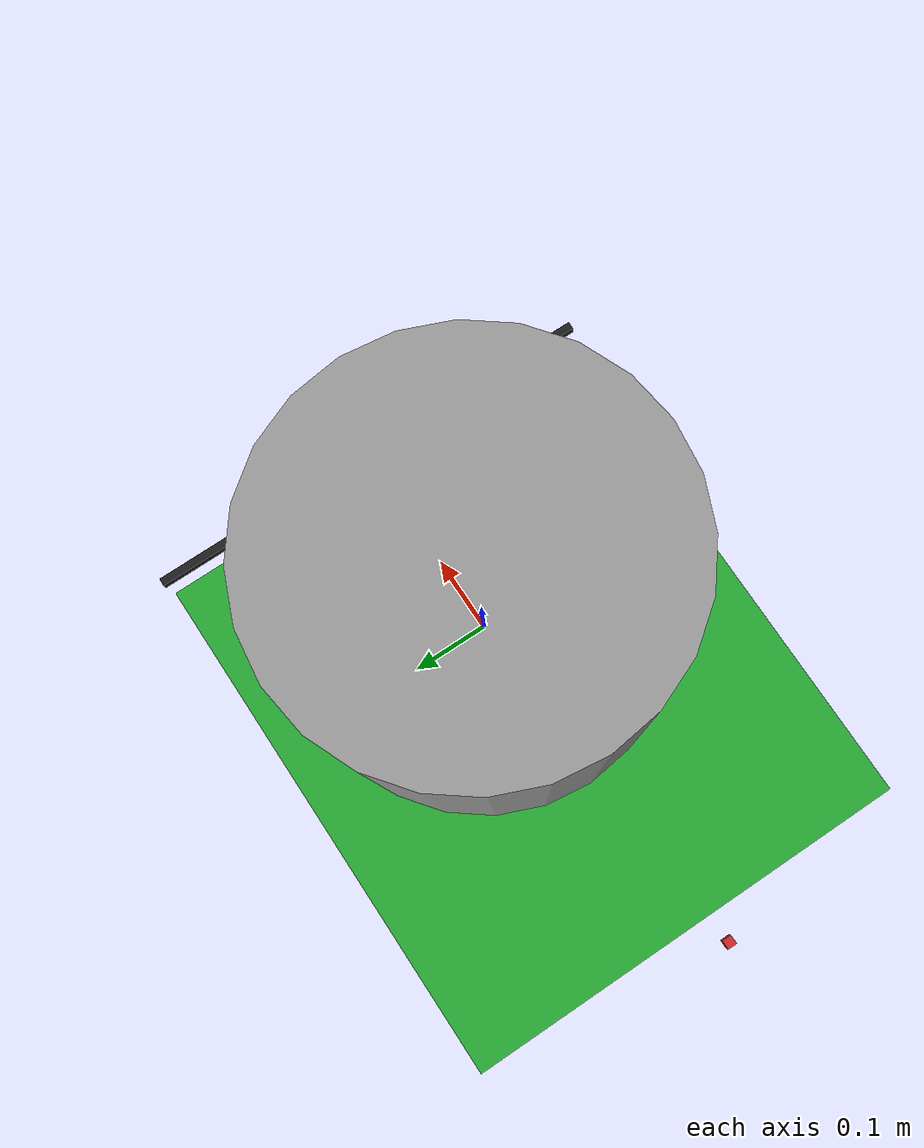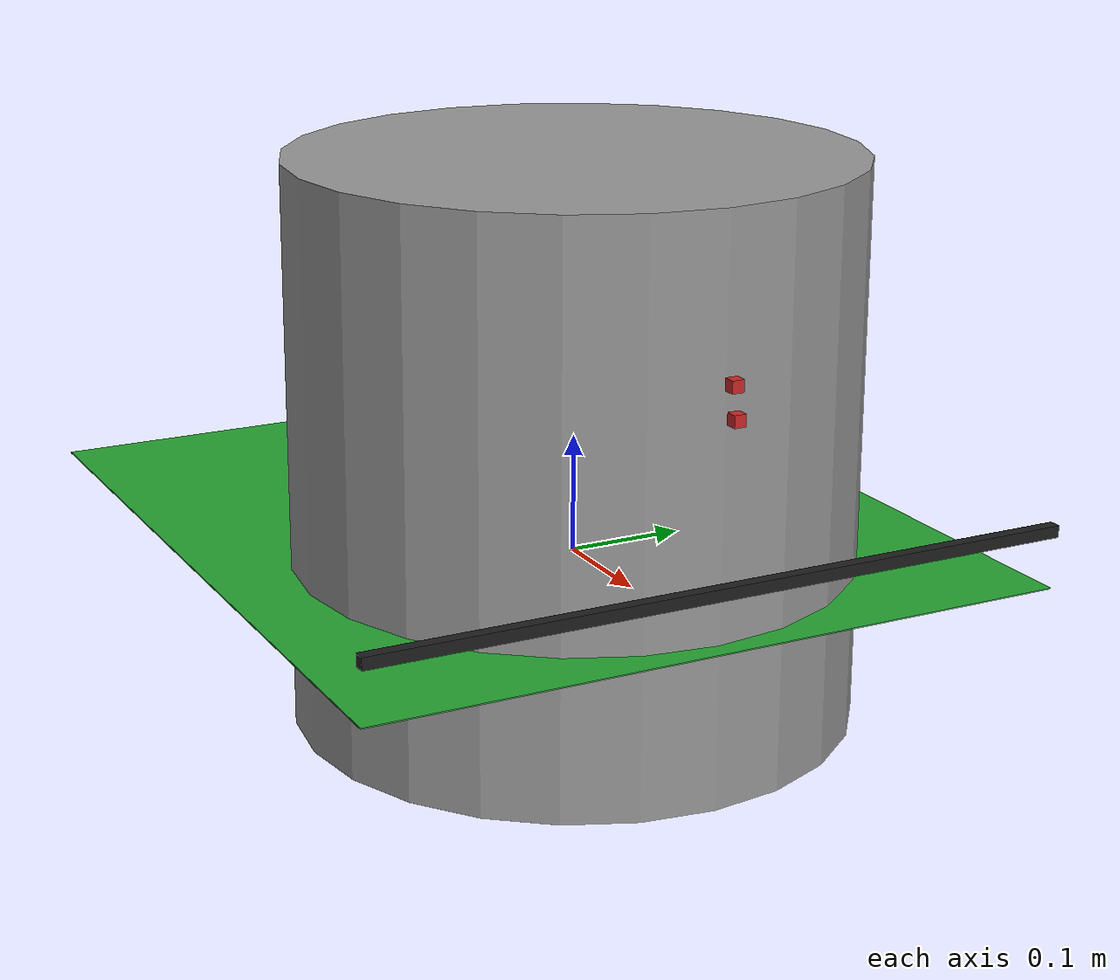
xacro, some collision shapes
<?xml version="1.0"?>

<robot name="tetraDS" xmlns:xacro="http://ros.org/wiki/xacro">

  <!-- Define a number of dimensions using properties -->
  <xacro:property name="PI" value="3.1415926" />

   <!-- Include all component files -->
   <xacro:include filename="$(find tetraDS_description)/urdf/tetraDS/materials.urdf.xacro" />
   <xacro:include filename="$(find tetraDS_description)/urdf/tetraDS/base.urdf.xacro" />

   <!-- Add the base and wheels -->
   <base name="base" color="Black"/>

  <link name="laser">
      <visual>
        <origin xyz="0 0 0" rpy="0 0 0" />
        <geometry>
          <box size="0.01 0.01 0.01" />
        </geometry>
        <material name="Red" />
      </visual>
  </link>

  <joint name="laser_flag" type="fixed">
    <origin xyz="0.120 0 0.131" rpy="0 0 -${PI/2}" />
    <parent link="base_link"/>
    <child link="laser" />
  </joint>

  <link name="laser_link2">
      <visual>
        <origin xyz="0 0 0" rpy="0 0 0" />
        <geometry>
          <box size="0.01 0.01 0.01" />
        </geometry>
        <material name="Red" />
      </visual>
  </link>

  <joint name="base_link_to_laser_link2" type="fixed">
    <origin xyz="-0.446 0.0 0.160" rpy="0 0 ${PI}" />
    <parent link="base_link"/>
    <child link="laser_link2" />
  </joint>

  <link name="imu_link">
      <visual>
        <origin xyz="0 0 0" rpy="0 0 0" />
        <geometry>
          <box size="0.01 0.01 0.01" />
        </geometry>
        <material name="Red" />
      </visual>
  </link>

  <joint name="base_link_to_imu_link" type="fixed">
    <origin xyz="0.0 0 0.124" rpy="0 0 0" />
    <parent link="base_link"/>
    <child link="imu_link" />
  </joint>

 <link name="usb_cam">
      <visual>
        <origin xyz="0 0 0" rpy="0 0 0" />
        <geometry>
          <box size="0.01 0.01 0.01" />
        </geometry>
        <material name="Red" />
      </visual>
  </link>

  <joint name="usb_cam" type="fixed">
    <origin xyz="0.248 0.0 0.108" rpy="1.5708 3.14159 1.5708"/>
    <parent link="base_link"/>
    <child link="usb_cam" />
  </joint>

 <link name="Front_bumper">
      <visual>
        <origin xyz="0 0 0" rpy="0 0 0" />
        <geometry>
          <box size="0.01 0.60 0.01" />
        </geometry>
        <material name="TransparentBlack" />
      </visual>
  </link>

  <joint name="Front_bumper" type="fixed">
    <origin xyz="0.252 0.0 -0.05" rpy="0 0 0" />
    <parent link="base_link"/>
    <child link="Front_bumper" />
  </joint>

   <link name="camera1_link">
      <visual>
        <origin xyz="0 0 0" rpy="0 0 0" />
        <geometry>
          <box size="0.01 0.01 0.01" />
        </geometry>
        <material name="Red" />
      </visual>
  </link>

  <joint name="camera1_link" type="fixed">
    <origin xyz="0.252 0.0 0.083" rpy="0 0 0" />
    <parent link="base_link"/>
    <child link="camera1_link" />
  </joint>

</robot>

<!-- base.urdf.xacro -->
<robot name="tetraDS" xmlns:xacro="http://ros.org/wiki/xacro">

  <!-- Define a number of dimensions using properties -->
  <xacro:property name="base_length" value="0.473" />
  <xacro:property name="base_radius" value="0.2365" />
  <xacro:property name="wheel_offset_z" value="-0.100" />
  <xacro:property name="PI" value="3.1415926" />

  <!-- The base xacro macro -->
  <xacro:macro name="base" params="name color">
   <link name="${name}_link">
    <visual>
    <origin xyz=" 0 0 0 " rpy="0 0 0" />
      <geometry>
        <mesh filename="package://tetraDS_description/meshes/tetra-dsv-ani-platfrom_stl.stl" scale="0.001 0.001 0.001" />
      </geometry>
      <material name="Grey"/>
    </visual>
      <collision>
            <origin xyz="0 0 0" rpy="0 0 0"/>
            <geometry>
                <cylinder length="${base_length}" radius="${base_radius}"/>
            </geometry>
      </collision>
    </link>
  </xacro:macro>

  <link name="base_footprint">
      <visual>
        <origin xyz="-0.097275 0 0" rpy="0 0 0" />
        <geometry>
	        <box size="0.69895 0.600 0.001" />
        </geometry>
        <material name="TransparentGreen" />
      </visual>
  </link>

  <joint name="base_joint" type="fixed"> <!--fixed-->
    <origin xyz="0 0 ${-wheel_offset_z}" rpy="0 0 0" />
    <parent link="base_footprint"/>
    <child link="base_link" />
  </joint>

</robot>
